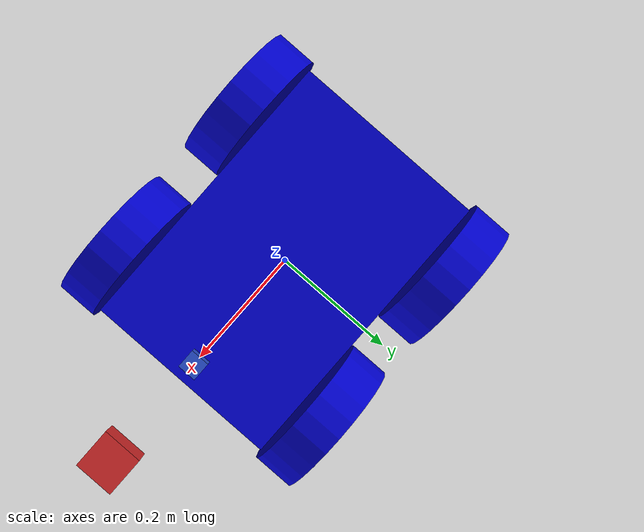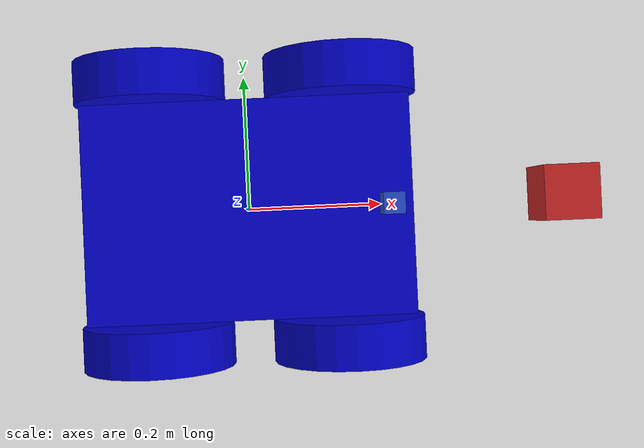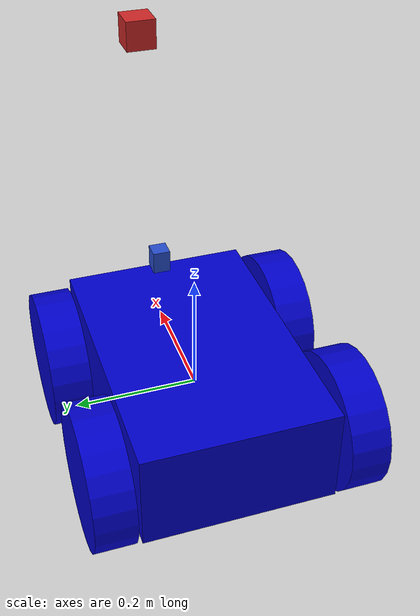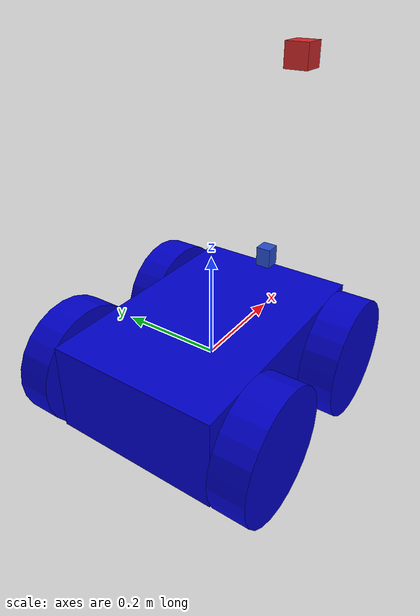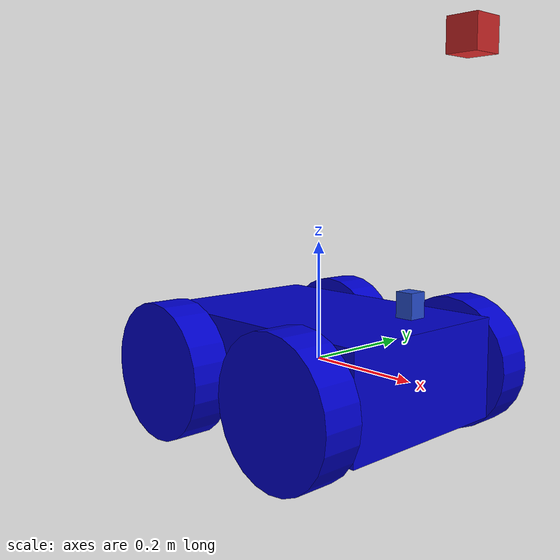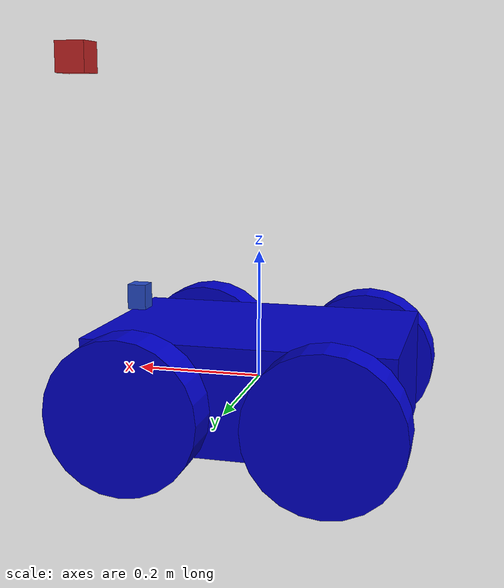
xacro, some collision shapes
<?xml version="1.0"?>
<robot name="test_robot" xmlns:xacro="http://wiki.ros.org/xacro">

    <xacro:include filename="$(find mrvk_description)/urdf/materials.urdf.xacro" />
    <xacro:include filename="$(find mrvk_description)/urdf/robot2.plugins.xacro" />

    <xacro:property name="laser_size_x" value="0.03"/>
    <xacro:property name="laser_size_y" value="0.03"/>
    <xacro:property name="laser_size_z" value="0.04"/>
    <xacro:property name="laser_origin_x" value="0.20"/>
    <xacro:property name="laser_origin_y" value="0"/>
    <xacro:property name="laser_origin_z" value="0.12"/>

     <xacro:property name="camera_link" value="0.05" />

    <xacro:macro name="default_inertial" params="mass">
        <inertial>
            <mass value="${mass}" />
            <inertia ixx="1.0" ixy="0.0" ixz="0.0" iyy="1.0" iyz="0.0" izz="1.0" />
        </inertial>
    </xacro:macro>

    <!-- Macro box -->
    <xacro:macro name="box_link" params="name size_x size_y size_z mass material_name">
        <link name="${name}">
            <visual>
                <origin xyz="0.0 0.0 0.0" rpy="0.0 0.0 0.0"/>
                <geometry>
                    <box size="${size_x} ${size_y} ${size_z}"/>
                </geometry>

                <material name="${material_name}"/>
            </visual>

            <collision>
                <origin xyz="0.0 0.0 0.0" rpy="0.0 0.0 0.0"/>
                <geometry>
                    <box size="${size_x} ${size_y} ${size_z}"/>
                </geometry>
            </collision>
            <xacro:default_inertial mass= "${mass}"/>
        </link>
    </xacro:macro>

    <!-- Macro koleso -->
    <xacro:macro name="wheel" params="prefix radius length joint_xyz mass">
        <link name="wheel_${prefix}_link">
            <xacro:default_inertial mass="${mass}"/>
            <visual>
                <origin xyz="0.0 0.0 0.0" rpy="0.0 0.0 0.0"/>
                <geometry>
                    <cylinder radius="${radius}" length="${length}"/>
                </geometry>
                <material name="Blue"/>
            </visual>
            <collision>
                <origin xyz="0.0 0.0 0.0" rpy="0.0 0.0 0.0"/>
                <geometry>
                    <cylinder radius="${radius}" length="${length}"/>
                </geometry>
            </collision>
        </link>

        <joint name="wheel_${prefix}_to_base_joint" type="continuous">
            <origin xyz="${joint_xyz}" rpy="${pi / 2} 0.0 0.0"/>
            <parent link="base_link"/>
            <child link="wheel_${prefix}_link"/>
            <axis xyz="0 0 -1"/>
        </joint>

        <transmission name="${prefix}_wheel_trans">
            <type>transmission_interface/SimpleTransmission</type>
            <actuator name="${prefix}_wheel_motor">
                <mechanicalReduction>1</mechanicalReduction>
            </actuator>

            <joint name="wheel_${prefix}_to_base_joint">
                <hardwareInterface>VelocityJointInterface</hardwareInterface>''
            </joint>
        </transmission>

        <gazebo reference="${prefix}_wheel">
            <mu1 value="200.0"/>
            <mu2 value="100.0"/>
            <kp value="100000.0" />
            <kd value="1.0" />
            <material>Gazebo/Grey</material>
        </gazebo>
    </xacro:macro>

    <xacro:box_link
        name="base_link"
        size_x="0.47" size_y="0.315" size_z="0.168"
        mass="30"
        material_name="Blue"/>

    <xacro:wheel
        prefix="left_front"
        radius="0.115"
        length="0.065"
        joint_xyz="0.145 0.20 -0.01"
        mass = "0.5"/>

    <xacro:wheel
        prefix="left_back"
        radius="0.115"
        length="0.065"
        joint_xyz="-0.145 0.20 -0.01"
        mass = "0.5"/>

    <xacro:wheel
        prefix="right_front"
        radius="0.115"
        length="0.065"
        joint_xyz="0.145 -0.20 -0.01"
        mass = "0.5"/>

    <xacro:wheel
        prefix="right_back"
        radius="0.115"
        length="0.065"
        joint_xyz="-0.145 -0.20 -0.01"
        mass = "0.5"/>

    <gazebo>
      <plugin filename="libgazebo_ros_skid_steer_drive.so" name="skid_steer_drive_controller">
        <updateRate>50</updateRate>
        <alwaysOn>1</alwaysOn>
        <robotNamespace>test_robot</robotNamespace>
        <leftFrontJoint>wheel_left_front_to_base_joint</leftFrontJoint>
        <rightFrontJoint>wheel_right_front_to_base_joint</rightFrontJoint>
        <leftRearJoint>wheel_left_back_to_base_joint</leftRearJoint>
        <rightRearJoint>wheel_right_back_to_base_joint</rightRearJoint>
        <wheelSeparation>0.48</wheelSeparation>
        <wheelDiameter>0.23</wheelDiameter>
        <robotBaseFrame>base_link</robotBaseFrame>
        <wheel_accel>1.8</wheel_accel>
        <torque>5</torque>
        <commandTopic>cmd_vel</commandTopic>
        <odometryTopic>odom</odometryTopic>
        <odometryFrame>odom</odometryFrame>
        <broadcastTF>true</broadcastTF>

        <alpha1>0.000</alpha1>
        <alpha2>0.00000</alpha2>
        <alpha3>0.00000</alpha3>
        <alpha4>0.000</alpha4>

        <covariance_x>0.0000</covariance_x>
        <covariance_y>0.0000</covariance_y>
        <covariance_yaw>0.0000</covariance_yaw>
      </plugin>
    </gazebo>

  <!-- Moj pokus o plugin -->

  <!--Laser Scan-->
  <link name="sensor_laser">
    <visual>
      <geometry>
        <mesh filename="package://mrvk_description/meshes/hokuyo.dae"/>
      </geometry>
      <material name="blue"/>
    </visual>
    <collision>
      <geometry>
        <box size="${laser_size_x} ${laser_size_y} ${laser_size_z}"/>
      </geometry>
    </collision>
    <xacro:default_inertial mass="0.02"/>
  </link>

  <joint name="sensor_laser_joint" type="fixed">
    <origin xyz="${laser_origin_x} ${laser_origin_y} ${laser_origin_z}" rpy="0 0 0" />
    <parent link="base_link"/>
    <child link="sensor_laser" />
  </joint>

  <!-- Camera -->
  <link name="camera">
    <collision>
      <origin xyz="0 0 0" rpy="0 0 0"/>
      <geometry>
        <box size="${camera_link} ${camera_link} ${camera_link}"/>
      </geometry>
    </collision>

    <visual>
      <origin xyz="0 0 0" rpy="0 0 0"/>
      <geometry>
        <box size="${camera_link} ${camera_link} ${camera_link}"/>
      </geometry>
      <material name="red"/>
    </visual>

    <inertial>
      <mass value="1e-5" />
      <origin xyz="0 0 0" rpy="0 0 0"/>
      <inertia ixx="1e-6" ixy="0" ixz="0" iyy="1e-6" iyz="0" izz="1e-6" />
    </inertial>
  </link>

  <joint name="camera_joint" type="fixed">
    <axis xyz="0 1 0" />
    <origin xyz="0.3 0 0.5" rpy="0 0 0"/>
    <parent link="base_link"/>
    <child link="camera"/>
  </joint>

</robot>

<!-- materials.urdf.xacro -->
<robot name="shoddy" xmlns:xacro="http://ros.org/wiki/xacro">

    <material name="Black">
        <color rgba="0.0 0.0 0.0 1.0"/>
    </material>

    <material name="Blue">
        <color rgba="0.0 0.0 0.8 1.0"/>
    </material>

    <material name="Green">
        <color rgba="0.0 0.8 0.0 1.0"/>
    </material>

    <material name="Grey">
        <color rgba="0.5 0.5 0.5 1.0"/>
    </material>

    <material name="DarkGrey">
        <color rgba="0.2 0.2 0.2 1.0"/>
    </material>

    <material name="White">
        <color rgba="1.0 1.0 1.0 1.0"/>
    </material>

    <material name= "kinect">
        <color rgba="0.2 0.2 0.2 1.0"/>
    </material>

</robot>
